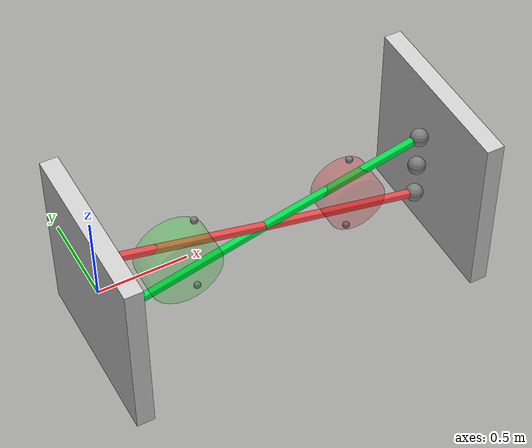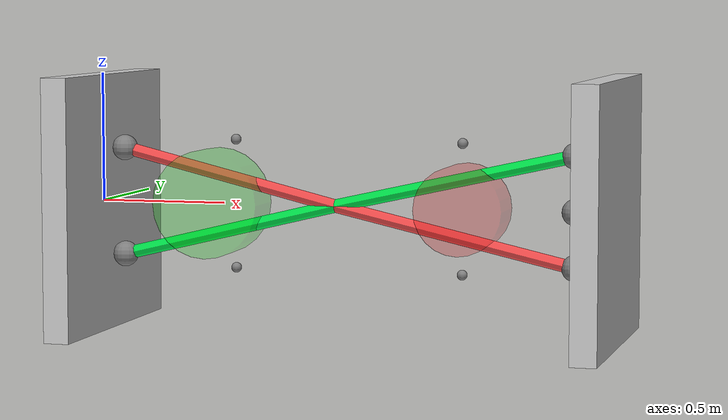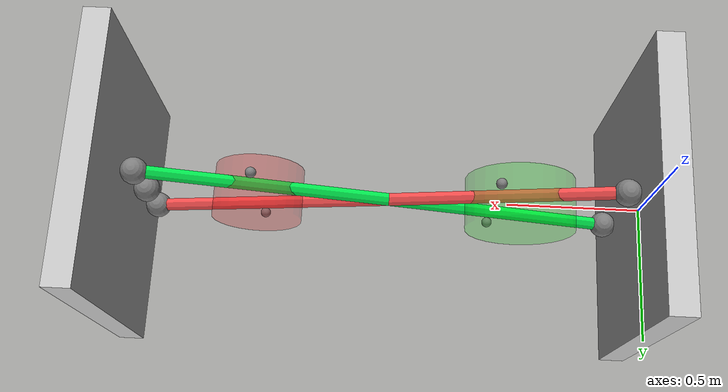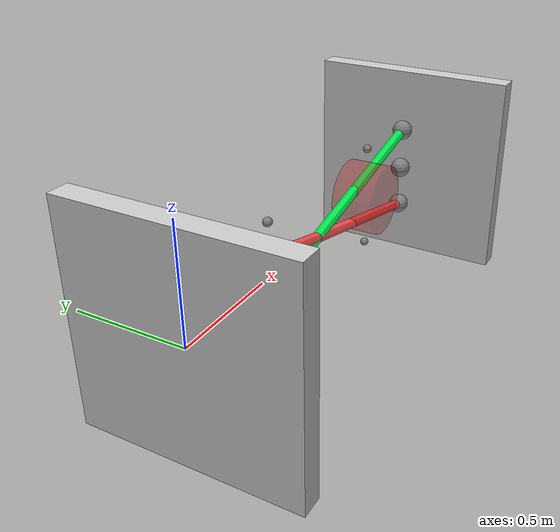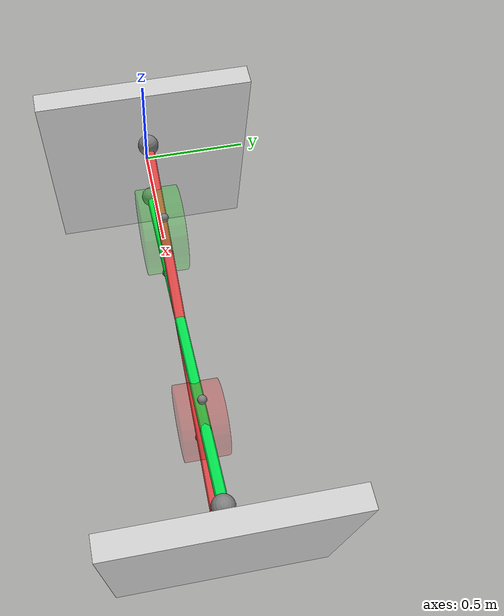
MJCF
<mujoco>
	<option gravity="0 0 0" />
	<worldbody>
        <light diffuse=".5 .5 .5" pos="0 0 3" dir="0 0 -1"/>
		<geom name="right_plane" type="box" size=".05 .5 .5" rgba="0.8 0.8 0.8 1"/>

		<site name="s1" size="0.05" pos="0.09 0 0.21"/>
		<site name="s2" size="0.05" pos="0.09 0 -0.21"/>

		<body pos="2 0 0">
			<geom name="left_plane" type="box" size=".05 .5 .5" rgba="0.8 0.8 0.8 1"/>
			<joint type="slide" axis="0 0 1"/>
			<site name="left_plane_site" size="0.05" pos="0 0 0"/>
		</body>

		<body pos="0.45 0 0">
			<joint type="hinge" axis="0 1 0"/>
			<geom name="pulley1" type="cylinder" size=".21 .1" rgba="0 0.9 0 0.25" euler="90 0 0 "/>
			<site name="pulley1_up_site" size="0.02" pos="0.1 0 0.25"/>
			<site name="pulley1_down_site" size="0.02" pos="0.1 0 -0.25"/>

			<site name="pulley1_pulley2_mid_site" size="0.02" pos="0.5 0 0"/>

			<body pos="1 0 0">
				<joint type="hinge" axis="0 1 0"/>
				<geom name="pulley2" type="cylinder" size=".17 .1" rgba="0.9 0 0 0.25" euler="90 0 0 "/>
				<site name="pulley2_up_site" size="0.02" pos="0 0 0.25"/>
				<site name="pulley2_down_site" size="0.02" pos="0 0 -0.25"/>

				<body pos="0.43 0 0">
					<site name="s3" size="0.05" pos="0 0 0.21"/>
					<site name="s4" size="0.05" pos="0 0 -0.21"/>
					<site name="end_effector_site" size="0.05" pos="0 0 0"/>
				</body>

			</body>

		</body>

	</worldbody>

	<equality>
            <weld site1="left_plane_site" site2="end_effector_site" torquescale="100"/>
	</equality>

	<tendon>
		<spatial name="tendon_1" width=".025" rgba=".95 .3 .3 1" stiffness="500000" damping="1000">
			<site site="s1"/>
			<geom geom="pulley1" sidesite="pulley1_up_site" />
			<site site="pulley1_pulley2_mid_site"/>
			<geom geom="pulley2" sidesite="pulley2_down_site"/>
			<site site="s4"/>
		</spatial>
  	</tendon>

	<tendon>
		<spatial name="tendon_2" width=".025" rgba=".0 .9 .3 1" stiffness="500000" damping="1000">
			<site site="s2"/>
			<geom geom="pulley1" sidesite="pulley1_down_site" />
			<site site="pulley1_pulley2_mid_site"/>
			<geom geom="pulley2" sidesite="pulley2_up_site"/>
			<site site="s3"/>
		</spatial>
  	</tendon>

	<actuator>
		<general name="general1" tendon="tendon_1" gear="100000"/>
		<general name="general2" tendon="tendon_2" gear="100000"/>
	</actuator>

	<sensor>
		<framepos objtype="site" objname="end_effector_site"/>
	</sensor>

</mujoco>
